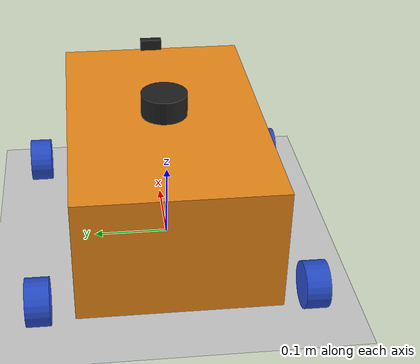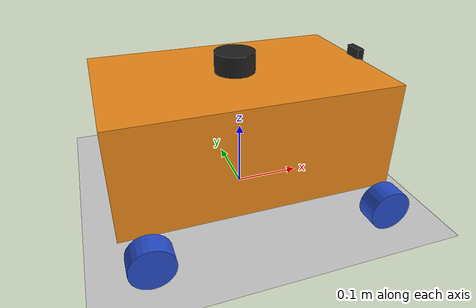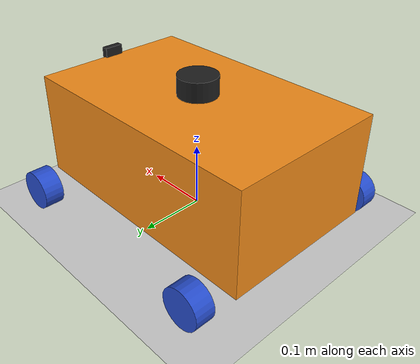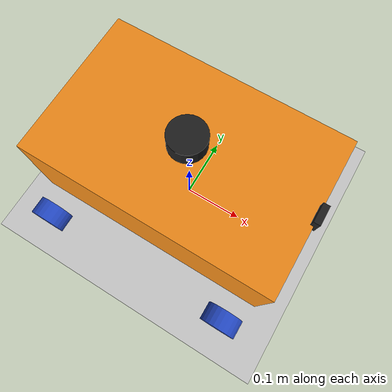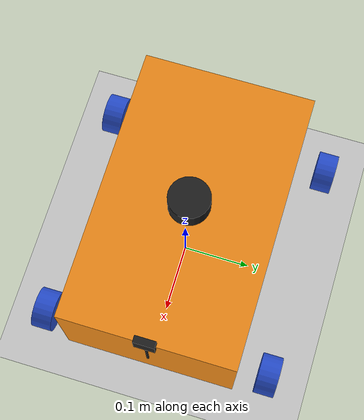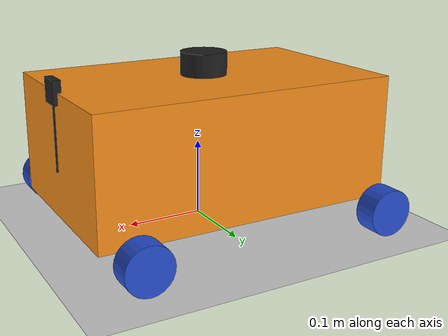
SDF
<sdf version="1.7">
 <world name="default">
  <light name="sun" type="directional">
   <pose>0 0 10 0 -0 0</pose>
   <diffuse>0.8 0.8 0.8 1</diffuse>
   <specular>0.2 0.2 0.2 1</specular>
   <attenuation>
    <range>1000</range>
    <constant>0.9</constant>
    <linear>0.01</linear>
    <quadratic>0.001</quadratic>
   </attenuation>
   <direction>-0.5 0.1 -0.9</direction>
   <spot><inner_angle>0</inner_angle><outer_angle>0</outer_angle><falloff>0</falloff></spot>
  </light>
  <model name="ground_plane">
   <static>1</static>
   <link name="link">
    <collision name="collision">
     <geometry><plane><normal>0 0 1</normal><size>100 100</size></plane></geometry>
     <surface><friction><ode><mu>100</mu><mu2>50</mu2></ode></friction></surface>
    </collision>
    <visual name="visual">
     <cast_shadows>0</cast_shadows>
     <geometry><plane><normal>0 0 1</normal><size>100 100</size></plane></geometry>
     <material>
      <script><uri>file://media/materials/scripts/gazebo.material</uri><name>Gazebo/Grey</name></script>
     </material>
    </visual>
   </link>
  </model>
  <gravity>0 0 -9.8</gravity>
  <magnetic_field>6e-06 2.3e-05 -4.2e-05</magnetic_field>
  <atmosphere type="adiabatic"/>
  <physics type="ode">
   <max_step_size>0.001</max_step_size>
   <real_time_factor>1</real_time_factor>
   <real_time_update_rate>1000</real_time_update_rate>
  </physics>
  <scene><ambient>0.4 0.4 0.4 1</ambient><background>0.7 0.7 0.7 1</background><shadows>1</shadows></scene>
  <audio><device>default</device></audio>
  <spherical_coordinates>
   <surface_model>EARTH_WGS84</surface_model>
   <latitude_deg>0</latitude_deg>
   <longitude_deg>0</longitude_deg>
   <elevation>0</elevation>
   <heading_deg>0</heading_deg>
  </spherical_coordinates>
  <model name="my_bot">
   <link name="base_link">
    <inertial>
     <pose>0 0 0.095833 0 -0 0</pose>
     <mass>0.6</mass>
     <inertia>
      <ixx>0.00445292</ixx>
      <ixy>0</ixy>
      <ixz>0</ixz>
      <iyy>0.00851542</iyy>
      <iyz>0</iyz>
      <izz>0.00931583</izz>
     </inertia>
    </inertial>
    <collision name="base_link_fixed_joint_lump__chassis_collision">
     <pose>0 0 0.08 0 -0 0</pose>
     <geometry><box><size>0.4 0.25 0.16</size></box></geometry>
    </collision>
    <collision name="base_link_fixed_joint_lump__laser_frame_collision_1">
     <pose>0 0 0.175 0 -0 0</pose>
     <geometry><cylinder><length>0.03</length><radius>0.03</radius></cylinder></geometry>
    </collision>
    <visual name="base_link_fixed_joint_lump__chassis_visual">
     <pose>0 0 0.08 0 -0 0</pose>
     <geometry><box><size>0.4 0.25 0.16</size></box></geometry>
     <material>
      <script><name>Gazebo/Orange</name><uri>file://media/materials/scripts/gazebo.material</uri></script>
     </material>
    </visual>
    <visual name="base_link_fixed_joint_lump__camera_link_visual_1">
     <pose>0.2 0 0.16 0 -0 0</pose>
     <geometry><box><size>0.01 0.03 0.03</size></box></geometry>
     <material>
      <script><name>Gazebo/Black</name><uri>file://media/materials/scripts/gazebo.material</uri></script>
     </material>
    </visual>
    <visual name="base_link_fixed_joint_lump__camera_link_visual_2">
     <pose>0.2 0 0.11 0 -0 0</pose>
     <geometry><cylinder><length>0.1</length><radius>0.002</radius></cylinder></geometry>
     <material>
      <script><name>Gazebo/Black</name><uri>file://media/materials/scripts/gazebo.material</uri></script>
     </material>
    </visual>
    <visual name="base_link_fixed_joint_lump__laser_frame_visual_3">
     <pose>0 0 0.175 0 -0 0</pose>
     <geometry><cylinder><length>0.03</length><radius>0.03</radius></cylinder></geometry>
     <material>
      <script><name>Gazebo/Black</name><uri>file://media/materials/scripts/gazebo.material</uri></script>
     </material>
    </visual>
    <sensor name="camera" type="camera">
     <visualize>1</visualize>
     <update_rate>10</update_rate>
     <camera>
      <horizontal_fov>1.089</horizontal_fov>
      <image><format>R8G8B8</format><width>640</width><height>480</height></image>
      <clip><near>0.05</near><far>8</far></clip>
     </camera>
     <plugin name="camera_controller" filename="libgazebo_ros_camera.so">
      <frame_name>camera_link_optical</frame_name>
     </plugin>
     <pose>0.2 0 0.16 0 -0 0</pose>
    </sensor>
    <sensor name="laser" type="ray">
     <visualize>1</visualize>
     <update_rate>10</update_rate>
     <ray>
      <scan>
       <horizontal>
        <samples>360</samples>
        <min_angle>-3.14</min_angle>
        <max_angle>3.14</max_angle>
        <resolution>1</resolution>
       </horizontal>
       <vertical><samples>1</samples><min_angle>0</min_angle><max_angle>0</max_angle></vertical>
      </scan>
      <range><min>0.3</min><max>12</max></range>
     </ray>
     <plugin name="laser_controller" filename="libgazebo_ros_ray_sensor.so">
      <ros><argument>~/out:=scan</argument></ros>
      <output_type>sensor_msgs/LaserScan</output_type>
      <frame_name>laser_frame</frame_name>
     </plugin>
     <pose>0 0 0.175 0 -0 0</pose>
    </sensor>
   </link>
   <joint name="base_to_wheel_back_left" type="revolute">
    <pose relative_to="base_link">-0.165 0.17 0 -1.5708 0 0</pose>
    <parent>base_link</parent>
    <child>wheel_back_left_link</child>
    <axis>
     <xyz>0 0 1</xyz>
     <limit><lower>-1e+16</lower><upper>1e+16</upper></limit>
     <dynamics><spring_reference>0</spring_reference><spring_stiffness>0</spring_stiffness></dynamics>
    </axis>
   </joint>
   <link name="wheel_back_left_link">
    <pose relative_to="base_to_wheel_back_left">0 0 0 0 -0 0</pose>
    <inertial>
     <mass>0.05</mass>
     <inertia><ixx>1.5e-05</ixx><ixy>0</ixy><ixz>0</ixz><iyy>1.5e-05</iyy><iyz>0</iyz><izz>2.25e-05</izz></inertia>
    </inertial>
    <collision name="wheel_back_left_link_collision">
     <geometry><sphere><radius>0.03</radius></sphere></geometry>
    </collision>
    <visual name="wheel_back_left_link_visual">
     <geometry><cylinder><length>0.03</length><radius>0.03</radius></cylinder></geometry>
     <material>
      <script><name>Gazebo/Blue</name><uri>file://media/materials/scripts/gazebo.material</uri></script>
     </material>
    </visual>
   </link>
   <joint name="base_to_wheel_back_right" type="revolute">
    <pose relative_to="base_link">-0.165 -0.17 0 1.5708 -0 0</pose>
    <parent>base_link</parent>
    <child>wheel_back_right_link</child>
    <axis>
     <xyz>0 0 -1</xyz>
     <limit><lower>-1e+16</lower><upper>1e+16</upper></limit>
     <dynamics><spring_reference>0</spring_reference><spring_stiffness>0</spring_stiffness></dynamics>
    </axis>
   </joint>
   <link name="wheel_back_right_link">
    <pose relative_to="base_to_wheel_back_right">0 0 0 0 -0 0</pose>
    <inertial>
     <mass>0.05</mass>
     <inertia><ixx>1.5e-05</ixx><ixy>0</ixy><ixz>0</ixz><iyy>1.5e-05</iyy><iyz>0</iyz><izz>2.25e-05</izz></inertia>
    </inertial>
    <collision name="wheel_back_right_link_collision">
     <geometry><sphere><radius>0.03</radius></sphere></geometry>
    </collision>
    <visual name="wheel_back_right_link_visual">
     <geometry><cylinder><length>0.03</length><radius>0.03</radius></cylinder></geometry>
     <material>
      <script><name>Gazebo/Blue</name><uri>file://media/materials/scripts/gazebo.material</uri></script>
     </material>
    </visual>
   </link>
   <joint name="base_to_wheel_front_left" type="revolute">
    <pose relative_to="base_link">0.165 0.17 0 -1.5708 0 0</pose>
    <parent>base_link</parent>
    <child>wheel_front_left_link</child>
    <axis>
     <xyz>0 0 1</xyz>
     <limit><lower>-1e+16</lower><upper>1e+16</upper></limit>
     <dynamics><spring_reference>0</spring_reference><spring_stiffness>0</spring_stiffness></dynamics>
    </axis>
   </joint>
   <link name="wheel_front_left_link">
    <pose relative_to="base_to_wheel_front_left">0 0 0 0 -0 0</pose>
    <inertial>
     <mass>0.05</mass>
     <inertia><ixx>1.5e-05</ixx><ixy>0</ixy><ixz>0</ixz><iyy>1.5e-05</iyy><iyz>0</iyz><izz>2.25e-05</izz></inertia>
    </inertial>
    <collision name="wheel_front_left_link_collision">
     <geometry><sphere><radius>0.03</radius></sphere></geometry>
    </collision>
    <visual name="wheel_front_left_link_visual">
     <geometry><cylinder><length>0.03</length><radius>0.03</radius></cylinder></geometry>
     <material>
      <script><name>Gazebo/Blue</name><uri>file://media/materials/scripts/gazebo.material</uri></script>
     </material>
    </visual>
   </link>
   <joint name="base_to_wheel_front_right" type="revolute">
    <pose relative_to="base_link">0.165 -0.17 0 1.5708 -0 0</pose>
    <parent>base_link</parent>
    <child>wheel_front_right_link</child>
    <axis>
     <xyz>0 0 -1</xyz>
     <limit><lower>-1e+16</lower><upper>1e+16</upper></limit>
     <dynamics><spring_reference>0</spring_reference><spring_stiffness>0</spring_stiffness></dynamics>
    </axis>
   </joint>
   <link name="wheel_front_right_link">
    <pose relative_to="base_to_wheel_front_right">0 0 0 0 -0 0</pose>
    <inertial>
     <mass>0.05</mass>
     <inertia><ixx>1.5e-05</ixx><ixy>0</ixy><ixz>0</ixz><iyy>1.5e-05</iyy><iyz>0</iyz><izz>2.25e-05</izz></inertia>
    </inertial>
    <collision name="wheel_front_right_link_collision">
     <geometry><sphere><radius>0.03</radius></sphere></geometry>
    </collision>
    <visual name="wheel_front_right_link_visual">
     <geometry><cylinder><length>0.03</length><radius>0.03</radius></cylinder></geometry>
     <material>
      <script><name>Gazebo/Blue</name><uri>file://media/materials/scripts/gazebo.material</uri></script>
     </material>
    </visual>
   </link>
   <static>0</static>
   <plugin name="diff_drive" filename="libgazebo_ros_diff_drive.so">
    <num_wheel_pairs>2</num_wheel_pairs>
    <left_joint>base_to_wheel_front_left</left_joint>
    <right_joint>base_to_wheel_front_right</right_joint>
    <left_joint>base_to_wheel_back_left</left_joint>
    <right_joint>base_to_wheel_back_right</right_joint>
    <wheel_separation>0.28</wheel_separation>
    <wheel_separation>0.28</wheel_separation>
    <wheel_diameter>0.03</wheel_diameter>
    <wheel_diameter>0.03</wheel_diameter>
    <max_wheel_torque>200</max_wheel_torque>
    <max_wheel_acceleration>10.0</max_wheel_acceleration>
    <odometry_frame>odom</odometry_frame>
    <robot_base_frame>base_link</robot_base_frame>
    <publish_odom>1</publish_odom>
    <publish_odom_tf>1</publish_odom_tf>
    <publish_wheel_tf>1</publish_wheel_tf>
   </plugin>
   <pose>-0.006593 0.004099 0.029996 -2.3e-05 -0 -6.1e-05</pose>
  </model>
 </world>
</sdf>
